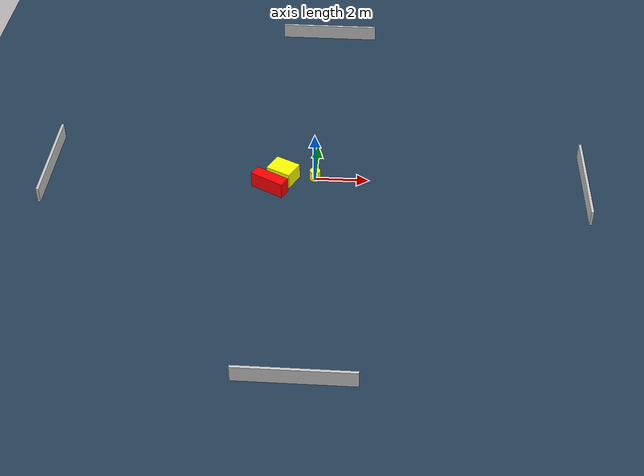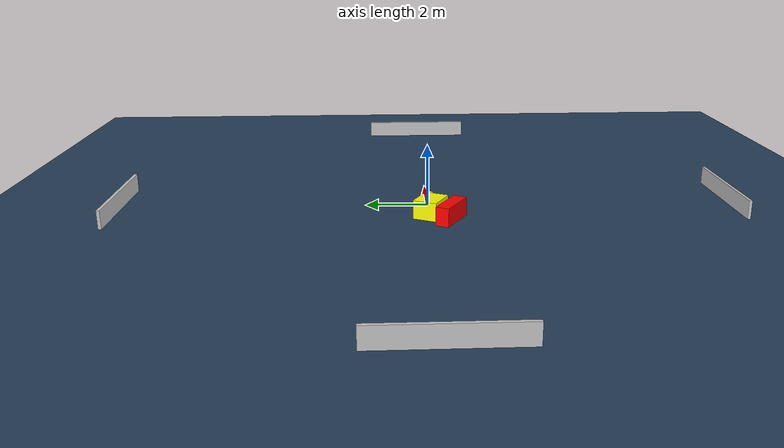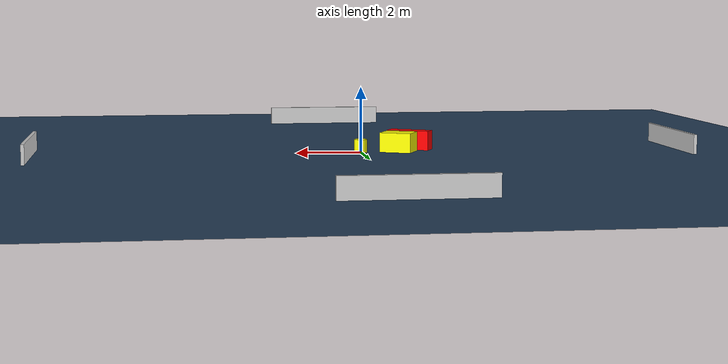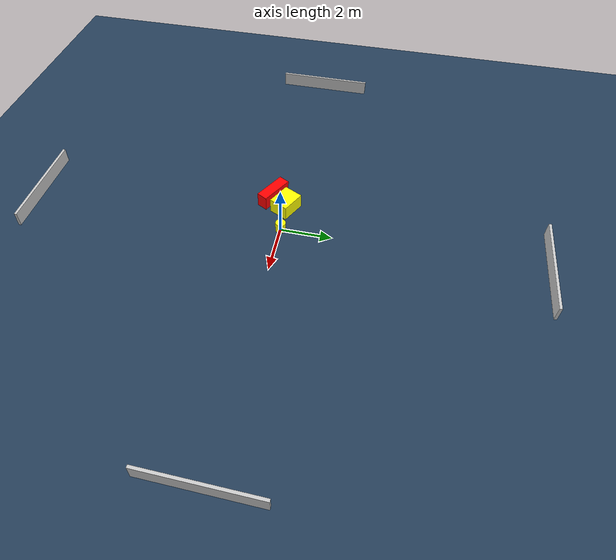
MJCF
<?xml version="1.0" ?>
<mujoco model="generated_environment">
  <option timestep="0.01" integrator="RK4" cone="elliptic"/>
  <default>
    <geom density="1"/>
  </default>
  <asset>
    <texture builtin="gradient" height="3072" name="skybox" rgb1="0.3 0.5 0.7" rgb2="0 0 0" type="skybox" width="512"/>
    <texture builtin="checker" height="300" name="groundplane" rgb1="0.2 0.3 0.4" rgb2="0.1 0.2 0.3" type="2d" width="300"/>
    <material name="groundplane" reflectance="0.2" texrepeat="5 5" texture="groundplane"/>
  </asset>
  <worldbody>
    <light dir="0 0 -1" directional="true" pos="0 0 1.5"/>
    <geom condim="3" friction="0.5 0.005 0.001" material="groundplane" name="floor" pos="0 0 0" size="0 0 0.05" type="plane"/>
    <body name="walls">
      <geom name="wall_1" condim="4" pos="-10.0 0.0 0.3" rgba="0.800000011920929 0.800000011920929 0.800000011920929 1.0" size="0.05 2.0 0.3" type="box"/>
      <geom name="wall_2" condim="4" pos="10.0 0.0 0.3" rgba="0.800000011920929 0.800000011920929 0.800000011920929 1.0" size="0.05 2.0 0.3" type="box"/>
      <geom name="wall_3" condim="4" pos="0.0 -10.0 0.3" rgba="0.800000011920929 0.800000011920929 0.800000011920929 1.0" size="2.0 0.05 0.3" type="box"/>
      <geom name="wall_4" condim="4" pos="0.0 10.0 0.3" rgba="0.800000011920929 0.800000011920929 0.800000011920929 1.0" size="2.0 0.05 0.3" type="box"/>
    </body>
    <body name="robot">
      <joint name="joint_x" type="slide" pos="0 0 0" axis="1 0 0"/>
      <joint name="joint_y" type="slide" pos="0 0 0" axis="0 1 0"/>
      <geom name="robot" type="cylinder" pos="0.0 0.0 0.2" size="0.2 0.2 0.0" mass="5.0" friction="1.0 0.005 0.0001" condim="4" rgba="1.0 1.0 0.0 1.0"/>
    </body>
    <body name="obstacle_1_movable">
      <geom name="obstacle_1_movable" condim="4" pos="-1.1902929094173775 -0.05603601257612714 0.3" euler="0 0 153.10392930061835" friction="0.0 0.005 0.001" rgba="1.0 1.0 0.0 1.0" size="0.4904543285790485 0.39064441314943754 0.3" type="box" mass="0.1"/>
      <joint type="free"/>
    </body>
    <body name="obstacle_2_static">
      <geom name="obstacle_2_static" condim="4" pos="-1.6448238227233967 -0.6763024221621126 0.3" euler="0 0 331.0218448805589" friction="0.0 0.005 0.001" rgba="1.0 0.0 0.0 1.0" size="0.6736493499558349 0.2208827732513069 0.3" type="box"/>
    </body>
  </worldbody>
  <actuator>
    <motor name="actuator_x" joint="joint_x" gear="1" ctrlrange="-1 1"/>
    <motor name="actuator_y" joint="joint_y" gear="1" ctrlrange="-1 1"/>
  </actuator>
</mujoco>
